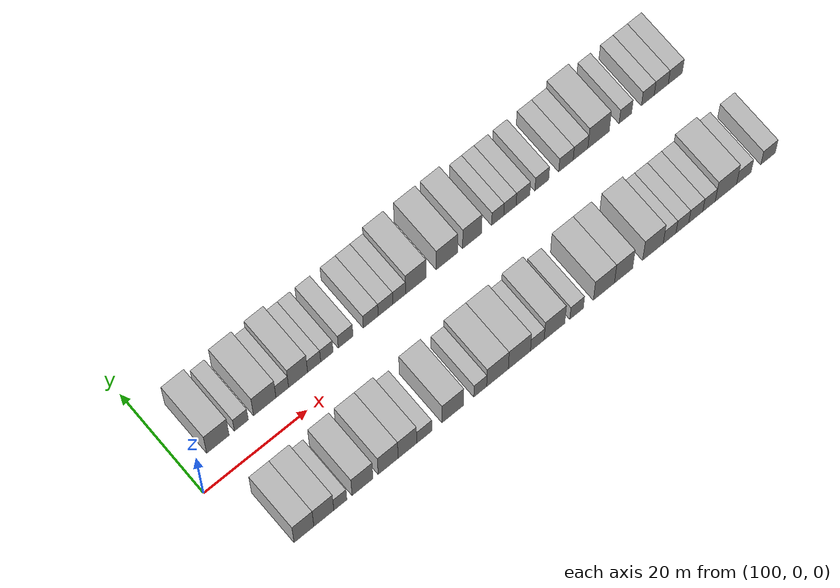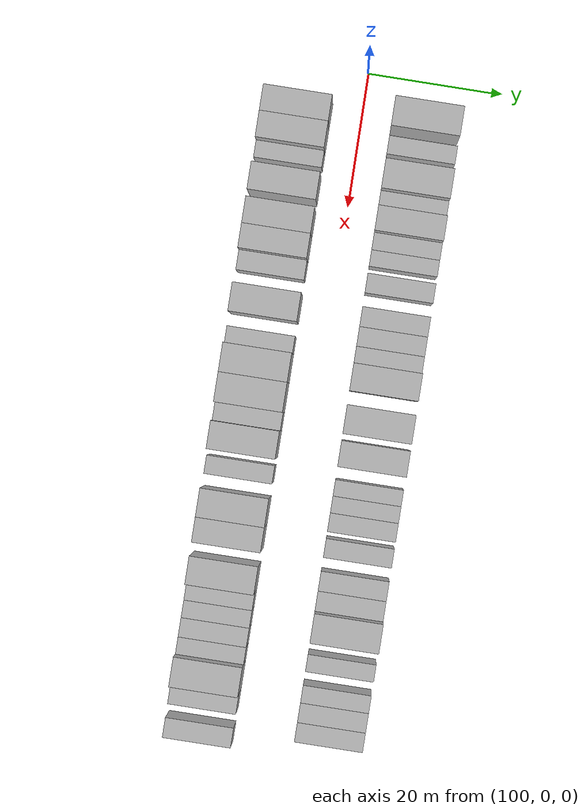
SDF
<sdf version="1.6">
 <world name="default">
  <model name="building_24">
   <static>1</static>
   <pose>106.3289 9.5000 0 0.000000 0.000000 1.570796</pose>
   <link name="link">
    <pose>0 0 4.50 0 0 0</pose>
    <collision name="collision"><geometry><box><size>10.0000 4.3384 9.0000</size></box></geometry></collision>
    <visual name="visual">
     <cast_shadows>0</cast_shadows>
     <geometry><box><size>10.0000 4.3384 9.0000</size></box></geometry>
     <material>
      <script>
       <uri>model://HANNAS_wall/materials/scripts</uri>
       <uri>model://HANNAS_wall/materials/textures</uri>
       <name>vrc/HANNAS_wall</name>
      </script>
     </material>
    </visual>
   </link>
  </model>
  <model name="building_25">
   <static>1</static>
   <pose>110.8491 9.5000 0 0.000000 0.000000 1.570796</pose>
   <link name="link">
    <pose>0 0 3.00 0 0 0</pose>
    <collision name="collision"><geometry><box><size>10.0000 2.7020 6.0000</size></box></geometry></collision>
    <visual name="visual">
     <cast_shadows>0</cast_shadows>
     <geometry><box><size>10.0000 2.7020 6.0000</size></box></geometry>
     <material>
      <script>
       <uri>model://HANNAS_wall/materials/scripts</uri>
       <uri>model://HANNAS_wall/materials/textures</uri>
       <name>vrc/HANNAS_wall</name>
      </script>
     </material>
    </visual>
   </link>
  </model>
  <model name="building_26">
   <static>1</static>
   <pose>115.3762 9.5000 0 0.000000 0.000000 1.570796</pose>
   <link name="link">
    <pose>0 0 4.50 0 0 0</pose>
    <collision name="collision"><geometry><box><size>10.0000 4.3522 9.0000</size></box></geometry></collision>
    <visual name="visual">
     <cast_shadows>0</cast_shadows>
     <geometry><box><size>10.0000 4.3522 9.0000</size></box></geometry>
     <material>
      <script>
       <uri>model://HANNAS_wall/materials/scripts</uri>
       <uri>model://HANNAS_wall/materials/textures</uri>
       <name>vrc/HANNAS_wall</name>
      </script>
     </material>
    </visual>
   </link>
  </model>
  <model name="building_27">
   <static>1</static>
   <pose>118.7818 9.5000 0 0.000000 0.000000 1.570796</pose>
   <link name="link">
    <pose>0 0 3.00 0 0 0</pose>
    <collision name="collision"><geometry><box><size>10.0000 2.4589 6.0000</size></box></geometry></collision>
    <visual name="visual">
     <cast_shadows>0</cast_shadows>
     <geometry><box><size>10.0000 2.4589 6.0000</size></box></geometry>
     <material>
      <script>
       <uri>model://HANNAS_wall/materials/scripts</uri>
       <uri>model://HANNAS_wall/materials/textures</uri>
       <name>vrc/HANNAS_wall</name>
      </script>
     </material>
    </visual>
   </link>
  </model>
  <model name="building_28">
   <static>1</static>
   <pose>121.8533 9.5000 0 0.000000 0.000000 1.570796</pose>
   <link name="link">
    <pose>0 0 4.50 0 0 0</pose>
    <collision name="collision"><geometry><box><size>10.0000 3.6843 9.0000</size></box></geometry></collision>
    <visual name="visual">
     <cast_shadows>0</cast_shadows>
     <geometry><box><size>10.0000 3.6843 9.0000</size></box></geometry>
     <material>
      <script>
       <uri>model://HANNAS_wall/materials/scripts</uri>
       <uri>model://HANNAS_wall/materials/textures</uri>
       <name>vrc/HANNAS_wall</name>
      </script>
     </material>
    </visual>
   </link>
  </model>
  <model name="building_29">
   <static>1</static>
   <pose>124.9723 9.5000 0 0.000000 0.000000 1.570796</pose>
   <link name="link">
    <pose>0 0 3.00 0 0 0</pose>
    <collision name="collision"><geometry><box><size>10.0000 2.5536 6.0000</size></box></geometry></collision>
    <visual name="visual">
     <cast_shadows>0</cast_shadows>
     <geometry><box><size>10.0000 2.5536 6.0000</size></box></geometry>
     <material>
      <script>
       <uri>model://HANNAS_wall/materials/scripts</uri>
       <uri>model://HANNAS_wall/materials/textures</uri>
       <name>vrc/HANNAS_wall</name>
      </script>
     </material>
    </visual>
   </link>
  </model>
  <model name="building_30">
   <static>1</static>
   <pose>127.4599 9.5000 0 0.000000 0.000000 1.570796</pose>
   <link name="link">
    <pose>0 0 3.00 0 0 0</pose>
    <collision name="collision"><geometry><box><size>10.0000 2.4216 6.0000</size></box></geometry></collision>
    <visual name="visual">
     <cast_shadows>0</cast_shadows>
     <geometry><box><size>10.0000 2.4216 6.0000</size></box></geometry>
     <material>
      <script>
       <uri>model://HANNAS_wall/materials/scripts</uri>
       <uri>model://HANNAS_wall/materials/textures</uri>
       <name>vrc/HANNAS_wall</name>
      </script>
     </material>
    </visual>
   </link>
  </model>
  <model name="building_31">
   <static>1</static>
   <pose>131.1179 9.5000 0 0.000000 0.000000 1.570796</pose>
   <link name="link">
    <pose>0 0 3.00 0 0 0</pose>
    <collision name="collision"><geometry><box><size>10.0000 2.8943 6.0000</size></box></geometry></collision>
    <visual name="visual">
     <cast_shadows>0</cast_shadows>
     <geometry><box><size>10.0000 2.8943 6.0000</size></box></geometry>
     <material>
      <script>
       <uri>model://HANNAS_wall/materials/scripts</uri>
       <uri>model://HANNAS_wall/materials/textures</uri>
       <name>vrc/HANNAS_wall</name>
      </script>
     </material>
    </visual>
   </link>
  </model>
  <model name="building_32">
   <static>1</static>
   <pose>136.0342 9.5000 0 0.000000 0.000000 1.570796</pose>
   <link name="link">
    <pose>0 0 3.00 0 0 0</pose>
    <collision name="collision"><geometry><box><size>10.0000 2.9383 6.0000</size></box></geometry></collision>
    <visual name="visual">
     <cast_shadows>0</cast_shadows>
     <geometry><box><size>10.0000 2.9383 6.0000</size></box></geometry>
     <material>
      <script>
       <uri>model://HANNAS_wall/materials/scripts</uri>
       <uri>model://HANNAS_wall/materials/textures</uri>
       <name>vrc/HANNAS_wall</name>
      </script>
     </material>
    </visual>
   </link>
  </model>
  <model name="building_33">
   <static>1</static>
   <pose>138.9468 9.5000 0 0.000000 0.000000 1.570796</pose>
   <link name="link">
    <pose>0 0 3.00 0 0 0</pose>
    <collision name="collision"><geometry><box><size>10.0000 2.8870 6.0000</size></box></geometry></collision>
    <visual name="visual">
     <cast_shadows>0</cast_shadows>
     <geometry><box><size>10.0000 2.8870 6.0000</size></box></geometry>
     <material>
      <script>
       <uri>model://HANNAS_wall/materials/scripts</uri>
       <uri>model://HANNAS_wall/materials/textures</uri>
       <name>vrc/HANNAS_wall</name>
      </script>
     </material>
    </visual>
   </link>
  </model>
  <model name="building_34">
   <static>1</static>
   <pose>141.6442 9.5000 0 0.000000 0.000000 1.570796</pose>
   <link name="link">
    <pose>0 0 3.00 0 0 0</pose>
    <collision name="collision"><geometry><box><size>10.0000 2.5078 6.0000</size></box></geometry></collision>
    <visual name="visual">
     <cast_shadows>0</cast_shadows>
     <geometry><box><size>10.0000 2.5078 6.0000</size></box></geometry>
     <material>
      <script>
       <uri>model://HANNAS_wall/materials/scripts</uri>
       <uri>model://HANNAS_wall/materials/textures</uri>
       <name>vrc/HANNAS_wall</name>
      </script>
     </material>
    </visual>
   </link>
  </model>
  <model name="building_35">
   <static>1</static>
   <pose>144.9210 9.5000 0 0.000000 0.000000 1.570796</pose>
   <link name="link">
    <pose>0 0 4.50 0 0 0</pose>
    <collision name="collision"><geometry><box><size>10.0000 4.0458 9.0000</size></box></geometry></collision>
    <visual name="visual">
     <cast_shadows>0</cast_shadows>
     <geometry><box><size>10.0000 4.0458 9.0000</size></box></geometry>
     <material>
      <script>
       <uri>model://HANNAS_wall/materials/scripts</uri>
       <uri>model://HANNAS_wall/materials/textures</uri>
       <name>vrc/HANNAS_wall</name>
      </script>
     </material>
    </visual>
   </link>
  </model>
  <model name="building_36">
   <static>1</static>
   <pose>151.0534 9.5000 0 0.000000 0.000000 1.570796</pose>
   <link name="link">
    <pose>0 0 4.50 0 0 0</pose>
    <collision name="collision"><geometry><box><size>10.0000 4.2190 9.0000</size></box></geometry></collision>
    <visual name="visual">
     <cast_shadows>0</cast_shadows>
     <geometry><box><size>10.0000 4.2190 9.0000</size></box></geometry>
     <material>
      <script>
       <uri>model://HANNAS_wall/materials/scripts</uri>
       <uri>model://HANNAS_wall/materials/textures</uri>
       <name>vrc/HANNAS_wall</name>
      </script>
     </material>
    </visual>
   </link>
  </model>
  <model name="building_37">
   <static>1</static>
   <pose>156.0537 9.5000 0 0.000000 0.000000 1.570796</pose>
   <link name="link">
    <pose>0 0 4.50 0 0 0</pose>
    <collision name="collision"><geometry><box><size>10.0000 3.7815 9.0000</size></box></geometry></collision>
    <visual name="visual">
     <cast_shadows>0</cast_shadows>
     <geometry><box><size>10.0000 3.7815 9.0000</size></box></geometry>
     <material>
      <script>
       <uri>model://HANNAS_wall/materials/scripts</uri>
       <uri>model://HANNAS_wall/materials/textures</uri>
       <name>vrc/HANNAS_wall</name>
      </script>
     </material>
    </visual>
   </link>
  </model>
  <model name="building_38">
   <static>1</static>
   <pose>161.1519 9.5000 0 0.000000 0.000000 1.570796</pose>
   <link name="link">
    <pose>0 0 3.00 0 0 0</pose>
    <collision name="collision"><geometry><box><size>10.0000 2.4148 6.0000</size></box></geometry></collision>
    <visual name="visual">
     <cast_shadows>0</cast_shadows>
     <geometry><box><size>10.0000 2.4148 6.0000</size></box></geometry>
     <material>
      <script>
       <uri>model://HANNAS_wall/materials/scripts</uri>
       <uri>model://HANNAS_wall/materials/textures</uri>
       <name>vrc/HANNAS_wall</name>
      </script>
     </material>
    </visual>
   </link>
  </model>
  <model name="building_39">
   <static>1</static>
   <pose>163.5922 9.5000 0 0.000000 0.000000 1.570796</pose>
   <link name="link">
    <pose>0 0 3.00 0 0 0</pose>
    <collision name="collision"><geometry><box><size>10.0000 2.4658 6.0000</size></box></geometry></collision>
    <visual name="visual">
     <cast_shadows>0</cast_shadows>
     <geometry><box><size>10.0000 2.4658 6.0000</size></box></geometry>
     <material>
      <script>
       <uri>model://HANNAS_wall/materials/scripts</uri>
       <uri>model://HANNAS_wall/materials/textures</uri>
       <name>vrc/HANNAS_wall</name>
      </script>
     </material>
    </visual>
   </link>
  </model>
  <model name="building_40">
   <static>1</static>
   <pose>166.2034 9.5000 0 0.000000 0.000000 1.570796</pose>
   <link name="link">
    <pose>0 0 3.00 0 0 0</pose>
    <collision name="collision"><geometry><box><size>10.0000 2.7566 6.0000</size></box></geometry></collision>
    <visual name="visual">
     <cast_shadows>0</cast_shadows>
     <geometry><box><size>10.0000 2.7566 6.0000</size></box></geometry>
     <material>
      <script>
       <uri>model://HANNAS_wall/materials/scripts</uri>
       <uri>model://HANNAS_wall/materials/textures</uri>
       <name>vrc/HANNAS_wall</name>
      </script>
     </material>
    </visual>
   </link>
  </model>
  <model name="building_41">
   <static>1</static>
   <pose>169.9763 9.5000 0 0.000000 0.000000 1.570796</pose>
   <link name="link">
    <pose>0 0 3.00 0 0 0</pose>
    <collision name="collision"><geometry><box><size>10.0000 2.7892 6.0000</size></box></geometry></collision>
    <visual name="visual">
     <cast_shadows>0</cast_shadows>
     <geometry><box><size>10.0000 2.7892 6.0000</size></box></geometry>
     <material>
      <script>
       <uri>model://HANNAS_wall/materials/scripts</uri>
       <uri>model://HANNAS_wall/materials/textures</uri>
       <name>vrc/HANNAS_wall</name>
      </script>
     </material>
    </visual>
   </link>
  </model>
  <model name="building_42">
   <static>1</static>
   <pose>174.8296 9.5000 0 0.000000 0.000000 1.570796</pose>
   <link name="link">
    <pose>0 0 3.00 0 0 0</pose>
    <collision name="collision"><geometry><box><size>10.0000 2.9173 6.0000</size></box></geometry></collision>
    <visual name="visual">
     <cast_shadows>0</cast_shadows>
     <geometry><box><size>10.0000 2.9173 6.0000</size></box></geometry>
     <material>
      <script>
       <uri>model://HANNAS_wall/materials/scripts</uri>
       <uri>model://HANNAS_wall/materials/textures</uri>
       <name>vrc/HANNAS_wall</name>
      </script>
     </material>
    </visual>
   </link>
  </model>
  <model name="building_43">
   <static>1</static>
   <pose>177.7691 9.5000 0 0.000000 0.000000 1.570796</pose>
   <link name="link">
    <pose>0 0 3.00 0 0 0</pose>
    <collision name="collision"><geometry><box><size>10.0000 2.9616 6.0000</size></box></geometry></collision>
    <visual name="visual">
     <cast_shadows>0</cast_shadows>
     <geometry><box><size>10.0000 2.9616 6.0000</size></box></geometry>
     <material>
      <script>
       <uri>model://HANNAS_wall/materials/scripts</uri>
       <uri>model://HANNAS_wall/materials/textures</uri>
       <name>vrc/HANNAS_wall</name>
      </script>
     </material>
    </visual>
   </link>
  </model>
  <model name="building_44">
   <static>1</static>
   <pose>181.4074 9.5000 0 0.000000 0.000000 1.570796</pose>
   <link name="link">
    <pose>0 0 4.50 0 0 0</pose>
    <collision name="collision"><geometry><box><size>10.0000 4.3151 9.0000</size></box></geometry></collision>
    <visual name="visual">
     <cast_shadows>0</cast_shadows>
     <geometry><box><size>10.0000 4.3151 9.0000</size></box></geometry>
     <material>
      <script>
       <uri>model://HANNAS_wall/materials/scripts</uri>
       <uri>model://HANNAS_wall/materials/textures</uri>
       <name>vrc/HANNAS_wall</name>
      </script>
     </material>
    </visual>
   </link>
  </model>
  <model name="building_45">
   <static>1</static>
   <pose>186.8320 9.5000 0 0.000000 0.000000 1.570796</pose>
   <link name="link">
    <pose>0 0 3.00 0 0 0</pose>
    <collision name="collision"><geometry><box><size>10.0000 2.5339 6.0000</size></box></geometry></collision>
    <visual name="visual">
     <cast_shadows>0</cast_shadows>
     <geometry><box><size>10.0000 2.5339 6.0000</size></box></geometry>
     <material>
      <script>
       <uri>model://HANNAS_wall/materials/scripts</uri>
       <uri>model://HANNAS_wall/materials/textures</uri>
       <name>vrc/HANNAS_wall</name>
      </script>
     </material>
    </visual>
   </link>
  </model>
  <model name="building_46">
   <static>1</static>
   <pose>191.3920 9.5000 0 0.000000 0.000000 1.570796</pose>
   <link name="link">
    <pose>0 0 3.00 0 0 0</pose>
    <collision name="collision"><geometry><box><size>10.0000 2.5862 6.0000</size></box></geometry></collision>
    <visual name="visual">
     <cast_shadows>0</cast_shadows>
     <geometry><box><size>10.0000 2.5862 6.0000</size></box></geometry>
     <material>
      <script>
       <uri>model://HANNAS_wall/materials/scripts</uri>
       <uri>model://HANNAS_wall/materials/textures</uri>
       <name>vrc/HANNAS_wall</name>
      </script>
     </material>
    </visual>
   </link>
  </model>
  <model name="building_47">
   <static>1</static>
   <pose>194.1227 9.5000 0 0.000000 0.000000 1.570796</pose>
   <link name="link">
    <pose>0 0 3.00 0 0 0</pose>
    <collision name="collision"><geometry><box><size>10.0000 2.8751 6.0000</size></box></geometry></collision>
    <visual name="visual">
     <cast_shadows>0</cast_shadows>
     <geometry><box><size>10.0000 2.8751 6.0000</size></box></geometry>
     <material>
      <script>
       <uri>model://HANNAS_wall/materials/scripts</uri>
       <uri>model://HANNAS_wall/materials/textures</uri>
       <name>vrc/HANNAS_wall</name>
      </script>
     </material>
    </visual>
   </link>
  </model>
  <model name="building_48">
   <static>1</static>
   <pose>196.9882 9.5000 0 0.000000 0.000000 1.570796</pose>
   <link name="link">
    <pose>0 0 3.00 0 0 0</pose>
    <collision name="collision"><geometry><box><size>10.0000 2.8558 6.0000</size></box></geometry></collision>
    <visual name="visual">
     <cast_shadows>0</cast_shadows>
     <geometry><box><size>10.0000 2.8558 6.0000</size></box></geometry>
     <material>
      <script>
       <uri>model://HANNAS_wall/materials/scripts</uri>
       <uri>model://HANNAS_wall/materials/textures</uri>
       <name>vrc/HANNAS_wall</name>
      </script>
     </material>
    </visual>
   </link>
  </model>
  <model name="building_75">
   <static>1</static>
   <pose>107.3693 -9.5000 0 0.000000 0.000000 1.570796</pose>
   <link name="link">
    <pose>0 0 4.50 0 0 0</pose>
    <collision name="collision"><geometry><box><size>10.0000 3.8168 9.0000</size></box></geometry></collision>
    <visual name="visual">
     <cast_shadows>0</cast_shadows>
     <geometry><box><size>10.0000 3.8168 9.0000</size></box></geometry>
     <material>
      <script>
       <uri>model://HANNAS_wall/materials/scripts</uri>
       <uri>model://HANNAS_wall/materials/textures</uri>
       <name>vrc/HANNAS_wall</name>
      </script>
     </material>
    </visual>
   </link>
  </model>
  <model name="building_76">
   <static>1</static>
   <pose>111.2017 -9.5000 0 0.000000 0.000000 1.570796</pose>
   <link name="link">
    <pose>0 0 4.50 0 0 0</pose>
    <collision name="collision"><geometry><box><size>10.0000 3.8480 9.0000</size></box></geometry></collision>
    <visual name="visual">
     <cast_shadows>0</cast_shadows>
     <geometry><box><size>10.0000 3.8480 9.0000</size></box></geometry>
     <material>
      <script>
       <uri>model://HANNAS_wall/materials/scripts</uri>
       <uri>model://HANNAS_wall/materials/textures</uri>
       <name>vrc/HANNAS_wall</name>
      </script>
     </material>
    </visual>
   </link>
  </model>
  <model name="building_77">
   <static>1</static>
   <pose>114.3841 -9.5000 0 0.000000 0.000000 1.570796</pose>
   <link name="link">
    <pose>0 0 3.00 0 0 0</pose>
    <collision name="collision"><geometry><box><size>10.0000 2.5168 6.0000</size></box></geometry></collision>
    <visual name="visual">
     <cast_shadows>0</cast_shadows>
     <geometry><box><size>10.0000 2.5168 6.0000</size></box></geometry>
     <material>
      <script>
       <uri>model://HANNAS_wall/materials/scripts</uri>
       <uri>model://HANNAS_wall/materials/textures</uri>
       <name>vrc/HANNAS_wall</name>
      </script>
     </material>
    </visual>
   </link>
  </model>
  <model name="building_78">
   <static>1</static>
   <pose>118.6683 -9.5000 0 0.000000 0.000000 1.570796</pose>
   <link name="link">
    <pose>0 0 4.50 0 0 0</pose>
    <collision name="collision"><geometry><box><size>10.0000 4.0515 9.0000</size></box></geometry></collision>
    <visual name="visual">
     <cast_shadows>0</cast_shadows>
     <geometry><box><size>10.0000 4.0515 9.0000</size></box></geometry>
     <material>
      <script>
       <uri>model://HANNAS_wall/materials/scripts</uri>
       <uri>model://HANNAS_wall/materials/textures</uri>
       <name>vrc/HANNAS_wall</name>
      </script>
     </material>
    </visual>
   </link>
  </model>
  <model name="building_79">
   <static>1</static>
   <pose>123.6331 -9.5000 0 0.000000 0.000000 1.570796</pose>
   <link name="link">
    <pose>0 0 4.50 0 0 0</pose>
    <collision name="collision"><geometry><box><size>10.0000 3.8780 9.0000</size></box></geometry></collision>
    <visual name="visual">
     <cast_shadows>0</cast_shadows>
     <geometry><box><size>10.0000 3.8780 9.0000</size></box></geometry>
     <material>
      <script>
       <uri>model://HANNAS_wall/materials/scripts</uri>
       <uri>model://HANNAS_wall/materials/textures</uri>
       <name>vrc/HANNAS_wall</name>
      </script>
     </material>
    </visual>
   </link>
  </model>
  <model name="building_80">
   <static>1</static>
   <pose>127.3804 -9.5000 0 0.000000 0.000000 1.570796</pose>
   <link name="link">
    <pose>0 0 4.50 0 0 0</pose>
    <collision name="collision"><geometry><box><size>10.0000 3.6167 9.0000</size></box></geometry></collision>
    <visual name="visual">
     <cast_shadows>0</cast_shadows>
     <geometry><box><size>10.0000 3.6167 9.0000</size></box></geometry>
     <material>
      <script>
       <uri>model://HANNAS_wall/materials/scripts</uri>
       <uri>model://HANNAS_wall/materials/textures</uri>
       <name>vrc/HANNAS_wall</name>
      </script>
     </material>
    </visual>
   </link>
  </model>
  <model name="building_81">
   <static>1</static>
   <pose>130.6633 -9.5000 0 0.000000 0.000000 1.570796</pose>
   <link name="link">
    <pose>0 0 3.00 0 0 0</pose>
    <collision name="collision"><geometry><box><size>10.0000 2.9491 6.0000</size></box></geometry></collision>
    <visual name="visual">
     <cast_shadows>0</cast_shadows>
     <geometry><box><size>10.0000 2.9491 6.0000</size></box></geometry>
     <material>
      <script>
       <uri>model://HANNAS_wall/materials/scripts</uri>
       <uri>model://HANNAS_wall/materials/textures</uri>
       <name>vrc/HANNAS_wall</name>
      </script>
     </material>
    </visual>
   </link>
  </model>
  <model name="building_82">
   <static>1</static>
   <pose>136.2480 -9.5000 0 0.000000 0.000000 1.570796</pose>
   <link name="link">
    <pose>0 0 4.50 0 0 0</pose>
    <collision name="collision"><geometry><box><size>10.0000 4.2202 9.0000</size></box></geometry></collision>
    <visual name="visual">
     <cast_shadows>0</cast_shadows>
     <geometry><box><size>10.0000 4.2202 9.0000</size></box></geometry>
     <material>
      <script>
       <uri>model://HANNAS_wall/materials/scripts</uri>
       <uri>model://HANNAS_wall/materials/textures</uri>
       <name>vrc/HANNAS_wall</name>
      </script>
     </material>
    </visual>
   </link>
  </model>
  <model name="building_83">
   <static>1</static>
   <pose>141.6195 -9.5000 0 0.000000 0.000000 1.570796</pose>
   <link name="link">
    <pose>0 0 3.00 0 0 0</pose>
    <collision name="collision"><geometry><box><size>10.0000 2.5227 6.0000</size></box></geometry></collision>
    <visual name="visual">
     <cast_shadows>0</cast_shadows>
     <geometry><box><size>10.0000 2.5227 6.0000</size></box></geometry>
     <material>
      <script>
       <uri>model://HANNAS_wall/materials/scripts</uri>
       <uri>model://HANNAS_wall/materials/textures</uri>
       <name>vrc/HANNAS_wall</name>
      </script>
     </material>
    </visual>
   </link>
  </model>
  <model name="building_84">
   <static>1</static>
   <pose>145.0172 -9.5000 0 0.000000 0.000000 1.570796</pose>
   <link name="link">
    <pose>0 0 4.50 0 0 0</pose>
    <collision name="collision"><geometry><box><size>10.0000 4.2728 9.0000</size></box></geometry></collision>
    <visual name="visual">
     <cast_shadows>0</cast_shadows>
     <geometry><box><size>10.0000 4.2728 9.0000</size></box></geometry>
     <material>
      <script>
       <uri>model://HANNAS_wall/materials/scripts</uri>
       <uri>model://HANNAS_wall/materials/textures</uri>
       <name>vrc/HANNAS_wall</name>
      </script>
     </material>
    </visual>
   </link>
  </model>
  <model name="building_85">
   <static>1</static>
   <pose>149.3393 -9.5000 0 0.000000 0.000000 1.570796</pose>
   <link name="link">
    <pose>0 0 4.50 0 0 0</pose>
    <collision name="collision"><geometry><box><size>10.0000 4.3713 9.0000</size></box></geometry></collision>
    <visual name="visual">
     <cast_shadows>0</cast_shadows>
     <geometry><box><size>10.0000 4.3713 9.0000</size></box></geometry>
     <material>
      <script>
       <uri>model://HANNAS_wall/materials/scripts</uri>
       <uri>model://HANNAS_wall/materials/textures</uri>
       <name>vrc/HANNAS_wall</name>
      </script>
     </material>
    </visual>
   </link>
  </model>
  <model name="building_86">
   <static>1</static>
   <pose>152.8754 -9.5000 0 0.000000 0.000000 1.570796</pose>
   <link name="link">
    <pose>0 0 3.00 0 0 0</pose>
    <collision name="collision"><geometry><box><size>10.0000 2.7011 6.0000</size></box></geometry></collision>
    <visual name="visual">
     <cast_shadows>0</cast_shadows>
     <geometry><box><size>10.0000 2.7011 6.0000</size></box></geometry>
     <material>
      <script>
       <uri>model://HANNAS_wall/materials/scripts</uri>
       <uri>model://HANNAS_wall/materials/textures</uri>
       <name>vrc/HANNAS_wall</name>
      </script>
     </material>
    </visual>
   </link>
  </model>
  <model name="building_87">
   <static>1</static>
   <pose>156.2790 -9.5000 0 0.000000 0.000000 1.570796</pose>
   <link name="link">
    <pose>0 0 4.50 0 0 0</pose>
    <collision name="collision"><geometry><box><size>10.0000 4.1061 9.0000</size></box></geometry></collision>
    <visual name="visual">
     <cast_shadows>0</cast_shadows>
     <geometry><box><size>10.0000 4.1061 9.0000</size></box></geometry>
     <material>
      <script>
       <uri>model://HANNAS_wall/materials/scripts</uri>
       <uri>model://HANNAS_wall/materials/textures</uri>
       <name>vrc/HANNAS_wall</name>
      </script>
     </material>
    </visual>
   </link>
  </model>
  <model name="building_88">
   <static>1</static>
   <pose>160.6821 -9.5000 0 0.000000 0.000000 1.570796</pose>
   <link name="link">
    <pose>0 0 3.00 0 0 0</pose>
    <collision name="collision"><geometry><box><size>10.0000 2.7001 6.0000</size></box></geometry></collision>
    <visual name="visual">
     <cast_shadows>0</cast_shadows>
     <geometry><box><size>10.0000 2.7001 6.0000</size></box></geometry>
     <material>
      <script>
       <uri>model://HANNAS_wall/materials/scripts</uri>
       <uri>model://HANNAS_wall/materials/textures</uri>
       <name>vrc/HANNAS_wall</name>
      </script>
     </material>
    </visual>
   </link>
  </model>
  <model name="building_89">
   <static>1</static>
   <pose>166.1311 -9.5000 0 0.000000 0.000000 1.570796</pose>
   <link name="link">
    <pose>0 0 4.50 0 0 0</pose>
    <collision name="collision"><geometry><box><size>10.0000 4.1979 9.0000</size></box></geometry></collision>
    <visual name="visual">
     <cast_shadows>0</cast_shadows>
     <geometry><box><size>10.0000 4.1979 9.0000</size></box></geometry>
     <material>
      <script>
       <uri>model://HANNAS_wall/materials/scripts</uri>
       <uri>model://HANNAS_wall/materials/textures</uri>
       <name>vrc/HANNAS_wall</name>
      </script>
     </material>
    </visual>
   </link>
  </model>
  <model name="building_90">
   <static>1</static>
   <pose>170.0549 -9.5000 0 0.000000 0.000000 1.570796</pose>
   <link name="link">
    <pose>0 0 4.50 0 0 0</pose>
    <collision name="collision"><geometry><box><size>10.0000 3.6498 9.0000</size></box></geometry></collision>
    <visual name="visual">
     <cast_shadows>0</cast_shadows>
     <geometry><box><size>10.0000 3.6498 9.0000</size></box></geometry>
     <material>
      <script>
       <uri>model://HANNAS_wall/materials/scripts</uri>
       <uri>model://HANNAS_wall/materials/textures</uri>
       <name>vrc/HANNAS_wall</name>
      </script>
     </material>
    </visual>
   </link>
  </model>
  <model name="building_91">
   <static>1</static>
   <pose>175.9458 -9.5000 0 0.000000 0.000000 1.570796</pose>
   <link name="link">
    <pose>0 0 4.50 0 0 0</pose>
    <collision name="collision"><geometry><box><size>10.0000 4.1320 9.0000</size></box></geometry></collision>
    <visual name="visual">
     <cast_shadows>0</cast_shadows>
     <geometry><box><size>10.0000 4.1320 9.0000</size></box></geometry>
     <material>
      <script>
       <uri>model://HANNAS_wall/materials/scripts</uri>
       <uri>model://HANNAS_wall/materials/textures</uri>
       <name>vrc/HANNAS_wall</name>
      </script>
     </material>
    </visual>
   </link>
  </model>
  <model name="building_92">
   <static>1</static>
   <pose>179.2980 -9.5000 0 0.000000 0.000000 1.570796</pose>
   <link name="link">
    <pose>0 0 3.00 0 0 0</pose>
    <collision name="collision"><geometry><box><size>10.0000 2.5722 6.0000</size></box></geometry></collision>
    <visual name="visual">
     <cast_shadows>0</cast_shadows>
     <geometry><box><size>10.0000 2.5722 6.0000</size></box></geometry>
     <material>
      <script>
       <uri>model://HANNAS_wall/materials/scripts</uri>
       <uri>model://HANNAS_wall/materials/textures</uri>
       <name>vrc/HANNAS_wall</name>
      </script>
     </material>
    </visual>
   </link>
  </model>
  <model name="building_93">
   <static>1</static>
   <pose>181.8725 -9.5000 0 0.000000 0.000000 1.570796</pose>
   <link name="link">
    <pose>0 0 3.00 0 0 0</pose>
    <collision name="collision"><geometry><box><size>10.0000 2.5769 6.0000</size></box></geometry></collision>
    <visual name="visual">
     <cast_shadows>0</cast_shadows>
     <geometry><box><size>10.0000 2.5769 6.0000</size></box></geometry>
     <material>
      <script>
       <uri>model://HANNAS_wall/materials/scripts</uri>
       <uri>model://HANNAS_wall/materials/textures</uri>
       <name>vrc/HANNAS_wall</name>
      </script>
     </material>
    </visual>
   </link>
  </model>
  <model name="building_94">
   <static>1</static>
   <pose>184.5781 -9.5000 0 0.000000 0.000000 1.570796</pose>
   <link name="link">
    <pose>0 0 3.00 0 0 0</pose>
    <collision name="collision"><geometry><box><size>10.0000 2.8343 6.0000</size></box></geometry></collision>
    <visual name="visual">
     <cast_shadows>0</cast_shadows>
     <geometry><box><size>10.0000 2.8343 6.0000</size></box></geometry>
     <material>
      <script>
       <uri>model://HANNAS_wall/materials/scripts</uri>
       <uri>model://HANNAS_wall/materials/textures</uri>
       <name>vrc/HANNAS_wall</name>
      </script>
     </material>
    </visual>
   </link>
  </model>
  <model name="building_95">
   <static>1</static>
   <pose>187.2545 -9.5000 0 0.000000 0.000000 1.570796</pose>
   <link name="link">
    <pose>0 0 3.00 0 0 0</pose>
    <collision name="collision"><geometry><box><size>10.0000 2.5185 6.0000</size></box></geometry></collision>
    <visual name="visual">
     <cast_shadows>0</cast_shadows>
     <geometry><box><size>10.0000 2.5185 6.0000</size></box></geometry>
     <material>
      <script>
       <uri>model://HANNAS_wall/materials/scripts</uri>
       <uri>model://HANNAS_wall/materials/textures</uri>
       <name>vrc/HANNAS_wall</name>
      </script>
     </material>
    </visual>
   </link>
  </model>
  <model name="building_96">
   <static>1</static>
   <pose>190.6866 -9.5000 0 0.000000 0.000000 1.570796</pose>
   <link name="link">
    <pose>0 0 4.50 0 0 0</pose>
    <collision name="collision"><geometry><box><size>10.0000 4.3458 9.0000</size></box></geometry></collision>
    <visual name="visual">
     <cast_shadows>0</cast_shadows>
     <geometry><box><size>10.0000 4.3458 9.0000</size></box></geometry>
     <material>
      <script>
       <uri>model://HANNAS_wall/materials/scripts</uri>
       <uri>model://HANNAS_wall/materials/textures</uri>
       <name>vrc/HANNAS_wall</name>
      </script>
     </material>
    </visual>
   </link>
  </model>
  <model name="building_97">
   <static>1</static>
   <pose>194.3310 -9.5000 0 0.000000 0.000000 1.570796</pose>
   <link name="link">
    <pose>0 0 3.00 0 0 0</pose>
    <collision name="collision"><geometry><box><size>10.0000 2.9430 6.0000</size></box></geometry></collision>
    <visual name="visual">
     <cast_shadows>0</cast_shadows>
     <geometry><box><size>10.0000 2.9430 6.0000</size></box></geometry>
     <material>
      <script>
       <uri>model://HANNAS_wall/materials/scripts</uri>
       <uri>model://HANNAS_wall/materials/textures</uri>
       <name>vrc/HANNAS_wall</name>
      </script>
     </material>
    </visual>
   </link>
  </model>
  <model name="building_98">
   <static>1</static>
   <pose>199.2703 -9.5000 0 0.000000 0.000000 1.570796</pose>
   <link name="link">
    <pose>0 0 3.00 0 0 0</pose>
    <collision name="collision"><geometry><box><size>10.0000 2.9355 6.0000</size></box></geometry></collision>
    <visual name="visual">
     <cast_shadows>0</cast_shadows>
     <geometry><box><size>10.0000 2.9355 6.0000</size></box></geometry>
     <material>
      <script>
       <uri>model://HANNAS_wall/materials/scripts</uri>
       <uri>model://HANNAS_wall/materials/textures</uri>
       <name>vrc/HANNAS_wall</name>
      </script>
     </material>
    </visual>
   </link>
  </model>
 </world>
</sdf>
